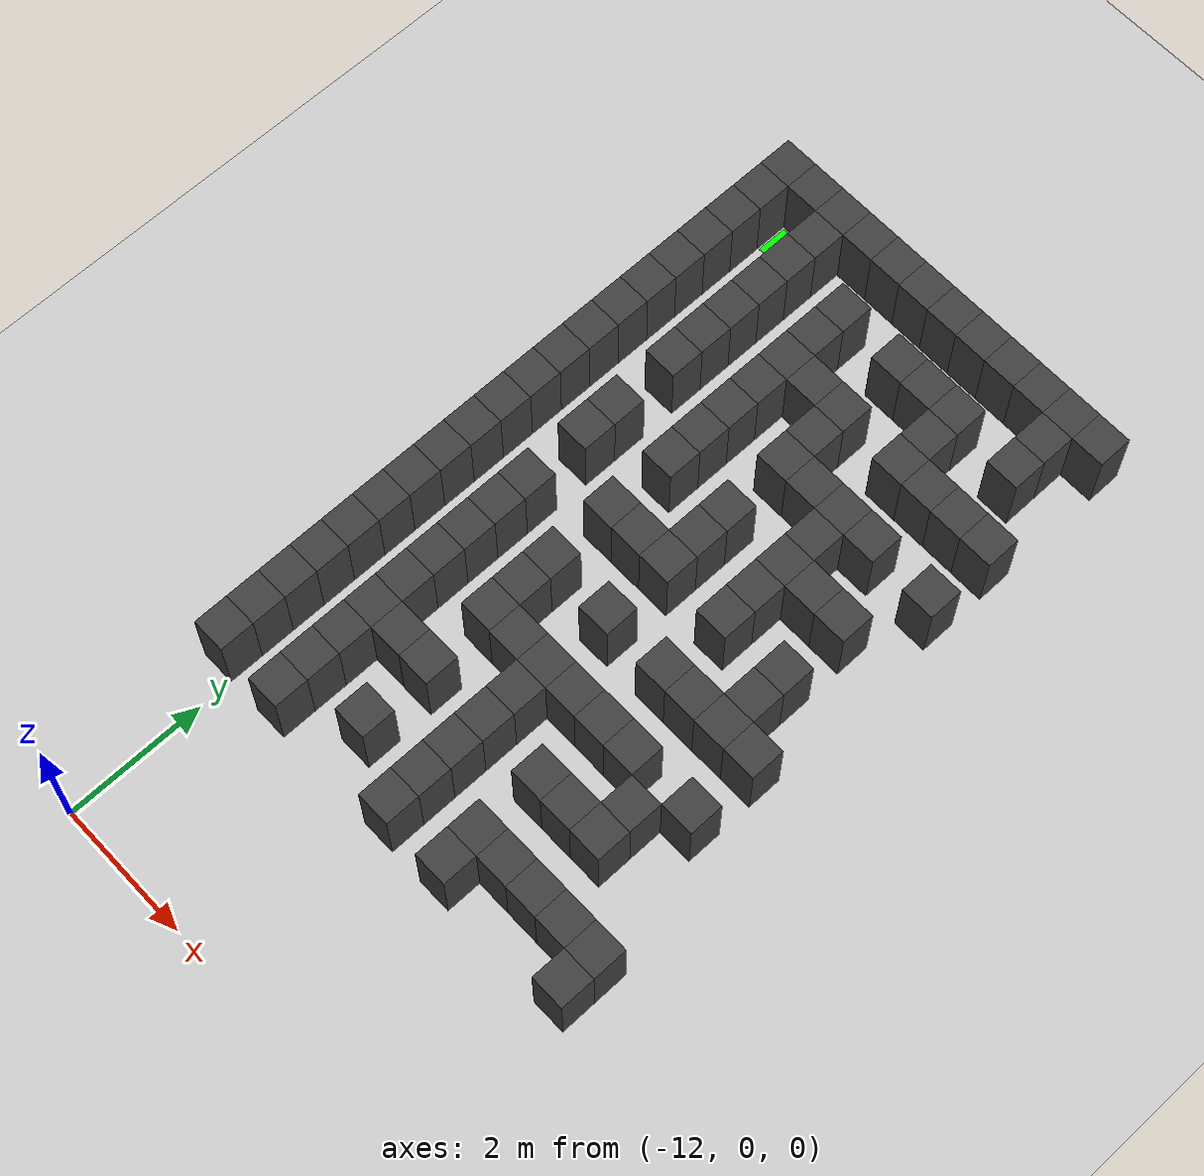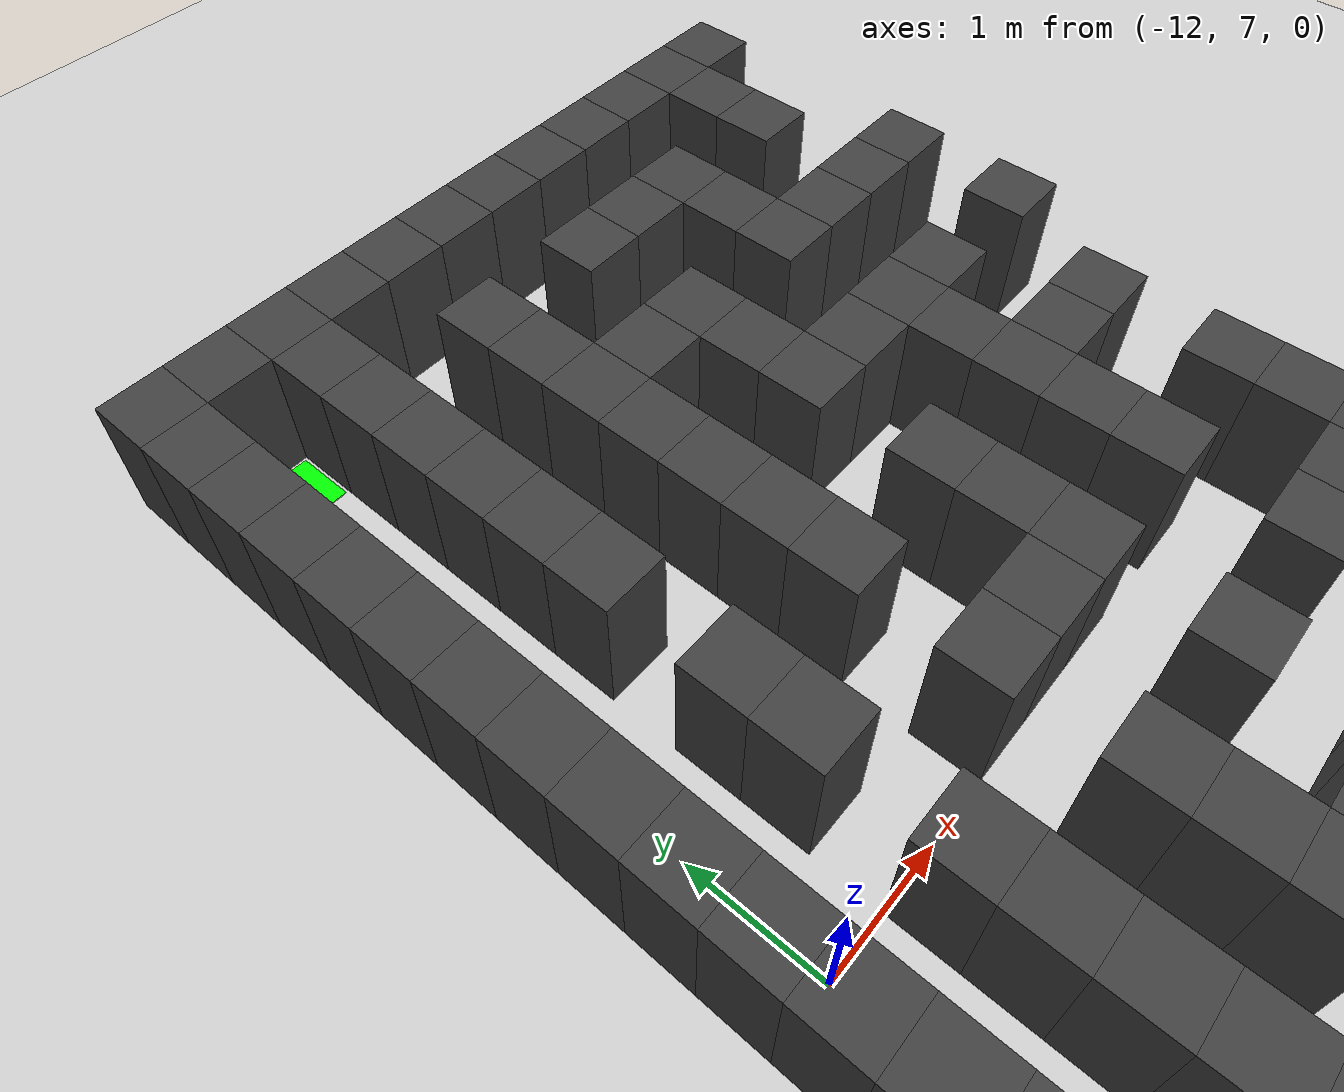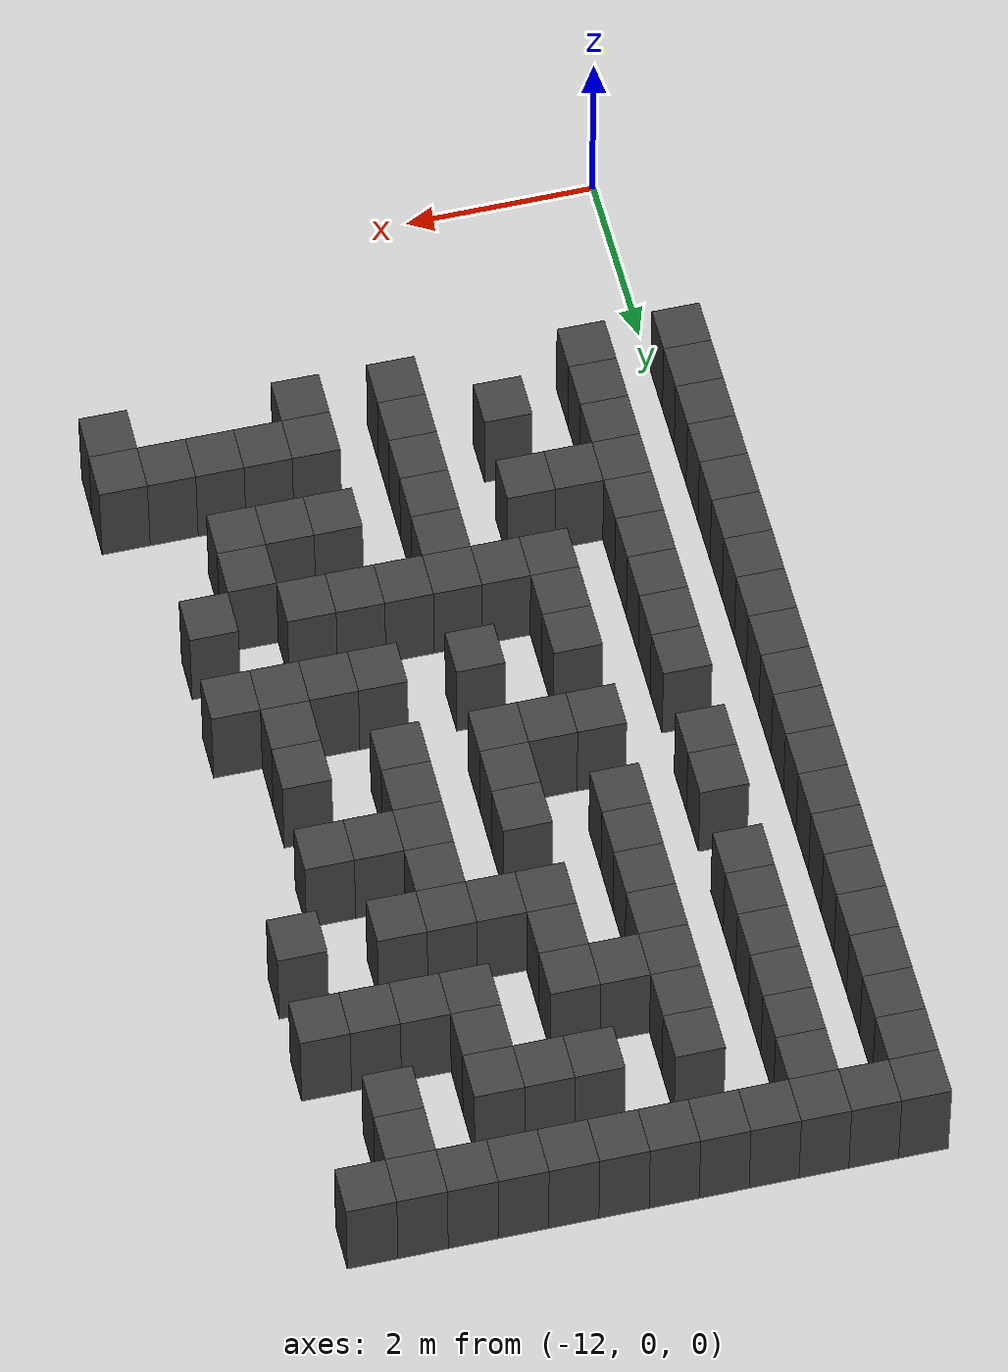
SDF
<sdf version="1.7">
 <world name="map_18814">
  <model name="ground_plane">
   <static>true</static>
   <link name="link">
    <collision name="collision">
     <geometry><plane><normal>0 0 1</normal><size>200 200</size></plane></geometry>
    </collision>
    <visual name="visual">
     <geometry><plane><normal>0 0 1</normal><size>200 200</size></plane></geometry>
     <material><ambient>0.8 0.8 0.8 1</ambient><diffuse>0.8 0.8 0.8 1</diffuse></material>
    </visual>
   </link>
  </model>
  <model name="maze_environment">
   <static>true</static>
   <link name="wall_0">
    <pose>-12.250 12.250 0.500 0 0 0</pose>
    <collision name="col"><geometry><box><size>0.5 0.5 1.0</size></box></geometry></collision>
    <visual name="vis">
     <geometry><box><size>0.5 0.5 1.0</size></box></geometry>
     <material><ambient>0.15 0.15 0.15 1</ambient><diffuse>0.25 0.25 0.25 1</diffuse></material>
    </visual>
   </link>
   <link name="wall_1">
    <pose>-11.750 12.250 0.500 0 0 0</pose>
    <collision name="col"><geometry><box><size>0.5 0.5 1.0</size></box></geometry></collision>
    <visual name="vis">
     <geometry><box><size>0.5 0.5 1.0</size></box></geometry>
     <material><ambient>0.15 0.15 0.15 1</ambient><diffuse>0.25 0.25 0.25 1</diffuse></material>
    </visual>
   </link>
   <link name="wall_2">
    <pose>-11.250 12.250 0.500 0 0 0</pose>
    <collision name="col"><geometry><box><size>0.5 0.5 1.0</size></box></geometry></collision>
    <visual name="vis">
     <geometry><box><size>0.5 0.5 1.0</size></box></geometry>
     <material><ambient>0.15 0.15 0.15 1</ambient><diffuse>0.25 0.25 0.25 1</diffuse></material>
    </visual>
   </link>
   <link name="wall_3">
    <pose>-10.750 12.250 0.500 0 0 0</pose>
    <collision name="col"><geometry><box><size>0.5 0.5 1.0</size></box></geometry></collision>
    <visual name="vis">
     <geometry><box><size>0.5 0.5 1.0</size></box></geometry>
     <material><ambient>0.15 0.15 0.15 1</ambient><diffuse>0.25 0.25 0.25 1</diffuse></material>
    </visual>
   </link>
   <link name="wall_4">
    <pose>-10.250 12.250 0.500 0 0 0</pose>
    <collision name="col"><geometry><box><size>0.5 0.5 1.0</size></box></geometry></collision>
    <visual name="vis">
     <geometry><box><size>0.5 0.5 1.0</size></box></geometry>
     <material><ambient>0.15 0.15 0.15 1</ambient><diffuse>0.25 0.25 0.25 1</diffuse></material>
    </visual>
   </link>
   <link name="wall_5">
    <pose>-9.750 12.250 0.500 0 0 0</pose>
    <collision name="col"><geometry><box><size>0.5 0.5 1.0</size></box></geometry></collision>
    <visual name="vis">
     <geometry><box><size>0.5 0.5 1.0</size></box></geometry>
     <material><ambient>0.15 0.15 0.15 1</ambient><diffuse>0.25 0.25 0.25 1</diffuse></material>
    </visual>
   </link>
   <link name="wall_6">
    <pose>-9.250 12.250 0.500 0 0 0</pose>
    <collision name="col"><geometry><box><size>0.5 0.5 1.0</size></box></geometry></collision>
    <visual name="vis">
     <geometry><box><size>0.5 0.5 1.0</size></box></geometry>
     <material><ambient>0.15 0.15 0.15 1</ambient><diffuse>0.25 0.25 0.25 1</diffuse></material>
    </visual>
   </link>
   <link name="wall_7">
    <pose>-8.750 12.250 0.500 0 0 0</pose>
    <collision name="col"><geometry><box><size>0.5 0.5 1.0</size></box></geometry></collision>
    <visual name="vis">
     <geometry><box><size>0.5 0.5 1.0</size></box></geometry>
     <material><ambient>0.15 0.15 0.15 1</ambient><diffuse>0.25 0.25 0.25 1</diffuse></material>
    </visual>
   </link>
   <link name="wall_8">
    <pose>-8.250 12.250 0.500 0 0 0</pose>
    <collision name="col"><geometry><box><size>0.5 0.5 1.0</size></box></geometry></collision>
    <visual name="vis">
     <geometry><box><size>0.5 0.5 1.0</size></box></geometry>
     <material><ambient>0.15 0.15 0.15 1</ambient><diffuse>0.25 0.25 0.25 1</diffuse></material>
    </visual>
   </link>
   <link name="wall_9">
    <pose>-7.750 12.250 0.500 0 0 0</pose>
    <collision name="col"><geometry><box><size>0.5 0.5 1.0</size></box></geometry></collision>
    <visual name="vis">
     <geometry><box><size>0.5 0.5 1.0</size></box></geometry>
     <material><ambient>0.15 0.15 0.15 1</ambient><diffuse>0.25 0.25 0.25 1</diffuse></material>
    </visual>
   </link>
   <link name="wall_10">
    <pose>-7.250 12.250 0.500 0 0 0</pose>
    <collision name="col"><geometry><box><size>0.5 0.5 1.0</size></box></geometry></collision>
    <visual name="vis">
     <geometry><box><size>0.5 0.5 1.0</size></box></geometry>
     <material><ambient>0.15 0.15 0.15 1</ambient><diffuse>0.25 0.25 0.25 1</diffuse></material>
    </visual>
   </link>
   <link name="wall_11">
    <pose>-6.750 12.250 0.500 0 0 0</pose>
    <collision name="col"><geometry><box><size>0.5 0.5 1.0</size></box></geometry></collision>
    <visual name="vis">
     <geometry><box><size>0.5 0.5 1.0</size></box></geometry>
     <material><ambient>0.15 0.15 0.15 1</ambient><diffuse>0.25 0.25 0.25 1</diffuse></material>
    </visual>
   </link>
   <link name="wall_50">
    <pose>-12.250 11.750 0.500 0 0 0</pose>
    <collision name="col"><geometry><box><size>0.5 0.5 1.0</size></box></geometry></collision>
    <visual name="vis">
     <geometry><box><size>0.5 0.5 1.0</size></box></geometry>
     <material><ambient>0.15 0.15 0.15 1</ambient><diffuse>0.25 0.25 0.25 1</diffuse></material>
    </visual>
   </link>
   <link name="wall_51">
    <pose>-11.250 11.750 0.500 0 0 0</pose>
    <collision name="col"><geometry><box><size>0.5 0.5 1.0</size></box></geometry></collision>
    <visual name="vis">
     <geometry><box><size>0.5 0.5 1.0</size></box></geometry>
     <material><ambient>0.15 0.15 0.15 1</ambient><diffuse>0.25 0.25 0.25 1</diffuse></material>
    </visual>
   </link>
   <link name="wall_52">
    <pose>-7.250 11.750 0.500 0 0 0</pose>
    <collision name="col"><geometry><box><size>0.5 0.5 1.0</size></box></geometry></collision>
    <visual name="vis">
     <geometry><box><size>0.5 0.5 1.0</size></box></geometry>
     <material><ambient>0.15 0.15 0.15 1</ambient><diffuse>0.25 0.25 0.25 1</diffuse></material>
    </visual>
   </link>
   <link name="wall_58">
    <pose>-12.250 11.250 0.500 0 0 0</pose>
    <collision name="col"><geometry><box><size>0.5 0.5 1.0</size></box></geometry></collision>
    <visual name="vis">
     <geometry><box><size>0.5 0.5 1.0</size></box></geometry>
     <material><ambient>0.15 0.15 0.15 1</ambient><diffuse>0.25 0.25 0.25 1</diffuse></material>
    </visual>
   </link>
   <link name="wall_59">
    <pose>-11.250 11.250 0.500 0 0 0</pose>
    <collision name="col"><geometry><box><size>0.5 0.5 1.0</size></box></geometry></collision>
    <visual name="vis">
     <geometry><box><size>0.5 0.5 1.0</size></box></geometry>
     <material><ambient>0.15 0.15 0.15 1</ambient><diffuse>0.25 0.25 0.25 1</diffuse></material>
    </visual>
   </link>
   <link name="wall_60">
    <pose>-10.250 11.250 0.500 0 0 0</pose>
    <collision name="col"><geometry><box><size>0.5 0.5 1.0</size></box></geometry></collision>
    <visual name="vis">
     <geometry><box><size>0.5 0.5 1.0</size></box></geometry>
     <material><ambient>0.15 0.15 0.15 1</ambient><diffuse>0.25 0.25 0.25 1</diffuse></material>
    </visual>
   </link>
   <link name="wall_61">
    <pose>-9.250 11.250 0.500 0 0 0</pose>
    <collision name="col"><geometry><box><size>0.5 0.5 1.0</size></box></geometry></collision>
    <visual name="vis">
     <geometry><box><size>0.5 0.5 1.0</size></box></geometry>
     <material><ambient>0.15 0.15 0.15 1</ambient><diffuse>0.25 0.25 0.25 1</diffuse></material>
    </visual>
   </link>
   <link name="wall_62">
    <pose>-8.750 11.250 0.500 0 0 0</pose>
    <collision name="col"><geometry><box><size>0.5 0.5 1.0</size></box></geometry></collision>
    <visual name="vis">
     <geometry><box><size>0.5 0.5 1.0</size></box></geometry>
     <material><ambient>0.15 0.15 0.15 1</ambient><diffuse>0.25 0.25 0.25 1</diffuse></material>
    </visual>
   </link>
   <link name="wall_63">
    <pose>-8.250 11.250 0.500 0 0 0</pose>
    <collision name="col"><geometry><box><size>0.5 0.5 1.0</size></box></geometry></collision>
    <visual name="vis">
     <geometry><box><size>0.5 0.5 1.0</size></box></geometry>
     <material><ambient>0.15 0.15 0.15 1</ambient><diffuse>0.25 0.25 0.25 1</diffuse></material>
    </visual>
   </link>
   <link name="wall_64">
    <pose>-7.250 11.250 0.500 0 0 0</pose>
    <collision name="col"><geometry><box><size>0.5 0.5 1.0</size></box></geometry></collision>
    <visual name="vis">
     <geometry><box><size>0.5 0.5 1.0</size></box></geometry>
     <material><ambient>0.15 0.15 0.15 1</ambient><diffuse>0.25 0.25 0.25 1</diffuse></material>
    </visual>
   </link>
   <link name="wall_94">
    <pose>-12.250 10.750 0.500 0 0 0</pose>
    <collision name="col"><geometry><box><size>0.5 0.5 1.0</size></box></geometry></collision>
    <visual name="vis">
     <geometry><box><size>0.5 0.5 1.0</size></box></geometry>
     <material><ambient>0.15 0.15 0.15 1</ambient><diffuse>0.25 0.25 0.25 1</diffuse></material>
    </visual>
   </link>
   <link name="wall_95">
    <pose>-11.250 10.750 0.500 0 0 0</pose>
    <collision name="col"><geometry><box><size>0.5 0.5 1.0</size></box></geometry></collision>
    <visual name="vis">
     <geometry><box><size>0.5 0.5 1.0</size></box></geometry>
     <material><ambient>0.15 0.15 0.15 1</ambient><diffuse>0.25 0.25 0.25 1</diffuse></material>
    </visual>
   </link>
   <link name="wall_96">
    <pose>-10.250 10.750 0.500 0 0 0</pose>
    <collision name="col"><geometry><box><size>0.5 0.5 1.0</size></box></geometry></collision>
    <visual name="vis">
     <geometry><box><size>0.5 0.5 1.0</size></box></geometry>
     <material><ambient>0.15 0.15 0.15 1</ambient><diffuse>0.25 0.25 0.25 1</diffuse></material>
    </visual>
   </link>
   <link name="wall_97">
    <pose>-8.250 10.750 0.500 0 0 0</pose>
    <collision name="col"><geometry><box><size>0.5 0.5 1.0</size></box></geometry></collision>
    <visual name="vis">
     <geometry><box><size>0.5 0.5 1.0</size></box></geometry>
     <material><ambient>0.15 0.15 0.15 1</ambient><diffuse>0.25 0.25 0.25 1</diffuse></material>
    </visual>
   </link>
   <link name="wall_109">
    <pose>-12.250 10.250 0.500 0 0 0</pose>
    <collision name="col"><geometry><box><size>0.5 0.5 1.0</size></box></geometry></collision>
    <visual name="vis">
     <geometry><box><size>0.5 0.5 1.0</size></box></geometry>
     <material><ambient>0.15 0.15 0.15 1</ambient><diffuse>0.25 0.25 0.25 1</diffuse></material>
    </visual>
   </link>
   <link name="wall_110">
    <pose>-11.250 10.250 0.500 0 0 0</pose>
    <collision name="col"><geometry><box><size>0.5 0.5 1.0</size></box></geometry></collision>
    <visual name="vis">
     <geometry><box><size>0.5 0.5 1.0</size></box></geometry>
     <material><ambient>0.15 0.15 0.15 1</ambient><diffuse>0.25 0.25 0.25 1</diffuse></material>
    </visual>
   </link>
   <link name="wall_111">
    <pose>-10.250 10.250 0.500 0 0 0</pose>
    <collision name="col"><geometry><box><size>0.5 0.5 1.0</size></box></geometry></collision>
    <visual name="vis">
     <geometry><box><size>0.5 0.5 1.0</size></box></geometry>
     <material><ambient>0.15 0.15 0.15 1</ambient><diffuse>0.25 0.25 0.25 1</diffuse></material>
    </visual>
   </link>
   <link name="wall_112">
    <pose>-9.750 10.250 0.500 0 0 0</pose>
    <collision name="col"><geometry><box><size>0.5 0.5 1.0</size></box></geometry></collision>
    <visual name="vis">
     <geometry><box><size>0.5 0.5 1.0</size></box></geometry>
     <material><ambient>0.15 0.15 0.15 1</ambient><diffuse>0.25 0.25 0.25 1</diffuse></material>
    </visual>
   </link>
   <link name="wall_113">
    <pose>-9.250 10.250 0.500 0 0 0</pose>
    <collision name="col"><geometry><box><size>0.5 0.5 1.0</size></box></geometry></collision>
    <visual name="vis">
     <geometry><box><size>0.5 0.5 1.0</size></box></geometry>
     <material><ambient>0.15 0.15 0.15 1</ambient><diffuse>0.25 0.25 0.25 1</diffuse></material>
    </visual>
   </link>
   <link name="wall_114">
    <pose>-8.250 10.250 0.500 0 0 0</pose>
    <collision name="col"><geometry><box><size>0.5 0.5 1.0</size></box></geometry></collision>
    <visual name="vis">
     <geometry><box><size>0.5 0.5 1.0</size></box></geometry>
     <material><ambient>0.15 0.15 0.15 1</ambient><diffuse>0.25 0.25 0.25 1</diffuse></material>
    </visual>
   </link>
   <link name="wall_115">
    <pose>-7.750 10.250 0.500 0 0 0</pose>
    <collision name="col"><geometry><box><size>0.5 0.5 1.0</size></box></geometry></collision>
    <visual name="vis">
     <geometry><box><size>0.5 0.5 1.0</size></box></geometry>
     <material><ambient>0.15 0.15 0.15 1</ambient><diffuse>0.25 0.25 0.25 1</diffuse></material>
    </visual>
   </link>
   <link name="wall_116">
    <pose>-7.250 10.250 0.500 0 0 0</pose>
    <collision name="col"><geometry><box><size>0.5 0.5 1.0</size></box></geometry></collision>
    <visual name="vis">
     <geometry><box><size>0.5 0.5 1.0</size></box></geometry>
     <material><ambient>0.15 0.15 0.15 1</ambient><diffuse>0.25 0.25 0.25 1</diffuse></material>
    </visual>
   </link>
   <link name="wall_117">
    <pose>-6.750 10.250 0.500 0 0 0</pose>
    <collision name="col"><geometry><box><size>0.5 0.5 1.0</size></box></geometry></collision>
    <visual name="vis">
     <geometry><box><size>0.5 0.5 1.0</size></box></geometry>
     <material><ambient>0.15 0.15 0.15 1</ambient><diffuse>0.25 0.25 0.25 1</diffuse></material>
    </visual>
   </link>
   <link name="wall_148">
    <pose>-12.250 9.750 0.500 0 0 0</pose>
    <collision name="col"><geometry><box><size>0.5 0.5 1.0</size></box></geometry></collision>
    <visual name="vis">
     <geometry><box><size>0.5 0.5 1.0</size></box></geometry>
     <material><ambient>0.15 0.15 0.15 1</ambient><diffuse>0.25 0.25 0.25 1</diffuse></material>
    </visual>
   </link>
   <link name="wall_149">
    <pose>-11.250 9.750 0.500 0 0 0</pose>
    <collision name="col"><geometry><box><size>0.5 0.5 1.0</size></box></geometry></collision>
    <visual name="vis">
     <geometry><box><size>0.5 0.5 1.0</size></box></geometry>
     <material><ambient>0.15 0.15 0.15 1</ambient><diffuse>0.25 0.25 0.25 1</diffuse></material>
    </visual>
   </link>
   <link name="wall_150">
    <pose>-10.250 9.750 0.500 0 0 0</pose>
    <collision name="col"><geometry><box><size>0.5 0.5 1.0</size></box></geometry></collision>
    <visual name="vis">
     <geometry><box><size>0.5 0.5 1.0</size></box></geometry>
     <material><ambient>0.15 0.15 0.15 1</ambient><diffuse>0.25 0.25 0.25 1</diffuse></material>
    </visual>
   </link>
   <link name="wall_151">
    <pose>-9.250 9.750 0.500 0 0 0</pose>
    <collision name="col"><geometry><box><size>0.5 0.5 1.0</size></box></geometry></collision>
    <visual name="vis">
     <geometry><box><size>0.5 0.5 1.0</size></box></geometry>
     <material><ambient>0.15 0.15 0.15 1</ambient><diffuse>0.25 0.25 0.25 1</diffuse></material>
    </visual>
   </link>
   <link name="wall_160">
    <pose>-12.250 9.250 0.500 0 0 0</pose>
    <collision name="col"><geometry><box><size>0.5 0.5 1.0</size></box></geometry></collision>
    <visual name="vis">
     <geometry><box><size>0.5 0.5 1.0</size></box></geometry>
     <material><ambient>0.15 0.15 0.15 1</ambient><diffuse>0.25 0.25 0.25 1</diffuse></material>
    </visual>
   </link>
   <link name="wall_161">
    <pose>-11.250 9.250 0.500 0 0 0</pose>
    <collision name="col"><geometry><box><size>0.5 0.5 1.0</size></box></geometry></collision>
    <visual name="vis">
     <geometry><box><size>0.5 0.5 1.0</size></box></geometry>
     <material><ambient>0.15 0.15 0.15 1</ambient><diffuse>0.25 0.25 0.25 1</diffuse></material>
    </visual>
   </link>
   <link name="wall_162">
    <pose>-10.250 9.250 0.500 0 0 0</pose>
    <collision name="col"><geometry><box><size>0.5 0.5 1.0</size></box></geometry></collision>
    <visual name="vis">
     <geometry><box><size>0.5 0.5 1.0</size></box></geometry>
     <material><ambient>0.15 0.15 0.15 1</ambient><diffuse>0.25 0.25 0.25 1</diffuse></material>
    </visual>
   </link>
   <link name="wall_163">
    <pose>-9.250 9.250 0.500 0 0 0</pose>
    <collision name="col"><geometry><box><size>0.5 0.5 1.0</size></box></geometry></collision>
    <visual name="vis">
     <geometry><box><size>0.5 0.5 1.0</size></box></geometry>
     <material><ambient>0.15 0.15 0.15 1</ambient><diffuse>0.25 0.25 0.25 1</diffuse></material>
    </visual>
   </link>
   <link name="wall_164">
    <pose>-8.750 9.250 0.500 0 0 0</pose>
    <collision name="col"><geometry><box><size>0.5 0.5 1.0</size></box></geometry></collision>
    <visual name="vis">
     <geometry><box><size>0.5 0.5 1.0</size></box></geometry>
     <material><ambient>0.15 0.15 0.15 1</ambient><diffuse>0.25 0.25 0.25 1</diffuse></material>
    </visual>
   </link>
   <link name="wall_165">
    <pose>-8.250 9.250 0.500 0 0 0</pose>
    <collision name="col"><geometry><box><size>0.5 0.5 1.0</size></box></geometry></collision>
    <visual name="vis">
     <geometry><box><size>0.5 0.5 1.0</size></box></geometry>
     <material><ambient>0.15 0.15 0.15 1</ambient><diffuse>0.25 0.25 0.25 1</diffuse></material>
    </visual>
   </link>
   <link name="wall_166">
    <pose>-7.750 9.250 0.500 0 0 0</pose>
    <collision name="col"><geometry><box><size>0.5 0.5 1.0</size></box></geometry></collision>
    <visual name="vis">
     <geometry><box><size>0.5 0.5 1.0</size></box></geometry>
     <material><ambient>0.15 0.15 0.15 1</ambient><diffuse>0.25 0.25 0.25 1</diffuse></material>
    </visual>
   </link>
   <link name="wall_167">
    <pose>-6.750 9.250 0.500 0 0 0</pose>
    <collision name="col"><geometry><box><size>0.5 0.5 1.0</size></box></geometry></collision>
    <visual name="vis">
     <geometry><box><size>0.5 0.5 1.0</size></box></geometry>
     <material><ambient>0.15 0.15 0.15 1</ambient><diffuse>0.25 0.25 0.25 1</diffuse></material>
    </visual>
   </link>
   <link name="wall_199">
    <pose>-12.250 8.750 0.500 0 0 0</pose>
    <collision name="col"><geometry><box><size>0.5 0.5 1.0</size></box></geometry></collision>
    <visual name="vis">
     <geometry><box><size>0.5 0.5 1.0</size></box></geometry>
     <material><ambient>0.15 0.15 0.15 1</ambient><diffuse>0.25 0.25 0.25 1</diffuse></material>
    </visual>
   </link>
   <link name="wall_200">
    <pose>-10.250 8.750 0.500 0 0 0</pose>
    <collision name="col"><geometry><box><size>0.5 0.5 1.0</size></box></geometry></collision>
    <visual name="vis">
     <geometry><box><size>0.5 0.5 1.0</size></box></geometry>
     <material><ambient>0.15 0.15 0.15 1</ambient><diffuse>0.25 0.25 0.25 1</diffuse></material>
    </visual>
   </link>
   <link name="wall_201">
    <pose>-8.250 8.750 0.500 0 0 0</pose>
    <collision name="col"><geometry><box><size>0.5 0.5 1.0</size></box></geometry></collision>
    <visual name="vis">
     <geometry><box><size>0.5 0.5 1.0</size></box></geometry>
     <material><ambient>0.15 0.15 0.15 1</ambient><diffuse>0.25 0.25 0.25 1</diffuse></material>
    </visual>
   </link>
   <link name="wall_212">
    <pose>-12.250 8.250 0.500 0 0 0</pose>
    <collision name="col"><geometry><box><size>0.5 0.5 1.0</size></box></geometry></collision>
    <visual name="vis">
     <geometry><box><size>0.5 0.5 1.0</size></box></geometry>
     <material><ambient>0.15 0.15 0.15 1</ambient><diffuse>0.25 0.25 0.25 1</diffuse></material>
    </visual>
   </link>
   <link name="wall_213">
    <pose>-11.250 8.250 0.500 0 0 0</pose>
    <collision name="col"><geometry><box><size>0.5 0.5 1.0</size></box></geometry></collision>
    <visual name="vis">
     <geometry><box><size>0.5 0.5 1.0</size></box></geometry>
     <material><ambient>0.15 0.15 0.15 1</ambient><diffuse>0.25 0.25 0.25 1</diffuse></material>
    </visual>
   </link>
   <link name="wall_214">
    <pose>-10.250 8.250 0.500 0 0 0</pose>
    <collision name="col"><geometry><box><size>0.5 0.5 1.0</size></box></geometry></collision>
    <visual name="vis">
     <geometry><box><size>0.5 0.5 1.0</size></box></geometry>
     <material><ambient>0.15 0.15 0.15 1</ambient><diffuse>0.25 0.25 0.25 1</diffuse></material>
    </visual>
   </link>
   <link name="wall_215">
    <pose>-9.250 8.250 0.500 0 0 0</pose>
    <collision name="col"><geometry><box><size>0.5 0.5 1.0</size></box></geometry></collision>
    <visual name="vis">
     <geometry><box><size>0.5 0.5 1.0</size></box></geometry>
     <material><ambient>0.15 0.15 0.15 1</ambient><diffuse>0.25 0.25 0.25 1</diffuse></material>
    </visual>
   </link>
   <link name="wall_216">
    <pose>-8.250 8.250 0.500 0 0 0</pose>
    <collision name="col"><geometry><box><size>0.5 0.5 1.0</size></box></geometry></collision>
    <visual name="vis">
     <geometry><box><size>0.5 0.5 1.0</size></box></geometry>
     <material><ambient>0.15 0.15 0.15 1</ambient><diffuse>0.25 0.25 0.25 1</diffuse></material>
    </visual>
   </link>
   <link name="wall_217">
    <pose>-7.750 8.250 0.500 0 0 0</pose>
    <collision name="col"><geometry><box><size>0.5 0.5 1.0</size></box></geometry></collision>
    <visual name="vis">
     <geometry><box><size>0.5 0.5 1.0</size></box></geometry>
     <material><ambient>0.15 0.15 0.15 1</ambient><diffuse>0.25 0.25 0.25 1</diffuse></material>
    </visual>
   </link>
   <link name="wall_218">
    <pose>-7.250 8.250 0.500 0 0 0</pose>
    <collision name="col"><geometry><box><size>0.5 0.5 1.0</size></box></geometry></collision>
    <visual name="vis">
     <geometry><box><size>0.5 0.5 1.0</size></box></geometry>
     <material><ambient>0.15 0.15 0.15 1</ambient><diffuse>0.25 0.25 0.25 1</diffuse></material>
    </visual>
   </link>
   <link name="wall_246">
    <pose>-12.250 7.750 0.500 0 0 0</pose>
    <collision name="col"><geometry><box><size>0.5 0.5 1.0</size></box></geometry></collision>
    <visual name="vis">
     <geometry><box><size>0.5 0.5 1.0</size></box></geometry>
     <material><ambient>0.15 0.15 0.15 1</ambient><diffuse>0.25 0.25 0.25 1</diffuse></material>
    </visual>
   </link>
   <link name="wall_247">
    <pose>-11.250 7.750 0.500 0 0 0</pose>
    <collision name="col"><geometry><box><size>0.5 0.5 1.0</size></box></geometry></collision>
    <visual name="vis">
     <geometry><box><size>0.5 0.5 1.0</size></box></geometry>
     <material><ambient>0.15 0.15 0.15 1</ambient><diffuse>0.25 0.25 0.25 1</diffuse></material>
    </visual>
   </link>
   <link name="wall_248">
    <pose>-9.250 7.750 0.500 0 0 0</pose>
    <collision name="col"><geometry><box><size>0.5 0.5 1.0</size></box></geometry></collision>
    <visual name="vis">
     <geometry><box><size>0.5 0.5 1.0</size></box></geometry>
     <material><ambient>0.15 0.15 0.15 1</ambient><diffuse>0.25 0.25 0.25 1</diffuse></material>
    </visual>
   </link>
   <link name="wall_249">
    <pose>-8.250 7.750 0.500 0 0 0</pose>
    <collision name="col"><geometry><box><size>0.5 0.5 1.0</size></box></geometry></collision>
    <visual name="vis">
     <geometry><box><size>0.5 0.5 1.0</size></box></geometry>
     <material><ambient>0.15 0.15 0.15 1</ambient><diffuse>0.25 0.25 0.25 1</diffuse></material>
    </visual>
   </link>
   <link name="wall_261">
    <pose>-12.250 7.250 0.500 0 0 0</pose>
    <collision name="col"><geometry><box><size>0.5 0.5 1.0</size></box></geometry></collision>
    <visual name="vis">
     <geometry><box><size>0.5 0.5 1.0</size></box></geometry>
     <material><ambient>0.15 0.15 0.15 1</ambient><diffuse>0.25 0.25 0.25 1</diffuse></material>
    </visual>
   </link>
   <link name="wall_262">
    <pose>-10.250 7.250 0.500 0 0 0</pose>
    <collision name="col"><geometry><box><size>0.5 0.5 1.0</size></box></geometry></collision>
    <visual name="vis">
     <geometry><box><size>0.5 0.5 1.0</size></box></geometry>
     <material><ambient>0.15 0.15 0.15 1</ambient><diffuse>0.25 0.25 0.25 1</diffuse></material>
    </visual>
   </link>
   <link name="wall_263">
    <pose>-9.750 7.250 0.500 0 0 0</pose>
    <collision name="col"><geometry><box><size>0.5 0.5 1.0</size></box></geometry></collision>
    <visual name="vis">
     <geometry><box><size>0.5 0.5 1.0</size></box></geometry>
     <material><ambient>0.15 0.15 0.15 1</ambient><diffuse>0.25 0.25 0.25 1</diffuse></material>
    </visual>
   </link>
   <link name="wall_264">
    <pose>-9.250 7.250 0.500 0 0 0</pose>
    <collision name="col"><geometry><box><size>0.5 0.5 1.0</size></box></geometry></collision>
    <visual name="vis">
     <geometry><box><size>0.5 0.5 1.0</size></box></geometry>
     <material><ambient>0.15 0.15 0.15 1</ambient><diffuse>0.25 0.25 0.25 1</diffuse></material>
    </visual>
   </link>
   <link name="wall_265">
    <pose>-8.250 7.250 0.500 0 0 0</pose>
    <collision name="col"><geometry><box><size>0.5 0.5 1.0</size></box></geometry></collision>
    <visual name="vis">
     <geometry><box><size>0.5 0.5 1.0</size></box></geometry>
     <material><ambient>0.15 0.15 0.15 1</ambient><diffuse>0.25 0.25 0.25 1</diffuse></material>
    </visual>
   </link>
   <link name="wall_266">
    <pose>-7.250 7.250 0.500 0 0 0</pose>
    <collision name="col"><geometry><box><size>0.5 0.5 1.0</size></box></geometry></collision>
    <visual name="vis">
     <geometry><box><size>0.5 0.5 1.0</size></box></geometry>
     <material><ambient>0.15 0.15 0.15 1</ambient><diffuse>0.25 0.25 0.25 1</diffuse></material>
    </visual>
   </link>
   <link name="wall_295">
    <pose>-12.250 6.750 0.500 0 0 0</pose>
    <collision name="col"><geometry><box><size>0.5 0.5 1.0</size></box></geometry></collision>
    <visual name="vis">
     <geometry><box><size>0.5 0.5 1.0</size></box></geometry>
     <material><ambient>0.15 0.15 0.15 1</ambient><diffuse>0.25 0.25 0.25 1</diffuse></material>
    </visual>
   </link>
   <link name="wall_296">
    <pose>-11.250 6.750 0.500 0 0 0</pose>
    <collision name="col"><geometry><box><size>0.5 0.5 1.0</size></box></geometry></collision>
    <visual name="vis">
     <geometry><box><size>0.5 0.5 1.0</size></box></geometry>
     <material><ambient>0.15 0.15 0.15 1</ambient><diffuse>0.25 0.25 0.25 1</diffuse></material>
    </visual>
   </link>
   <link name="wall_297">
    <pose>-7.250 6.750 0.500 0 0 0</pose>
    <collision name="col"><geometry><box><size>0.5 0.5 1.0</size></box></geometry></collision>
    <visual name="vis">
     <geometry><box><size>0.5 0.5 1.0</size></box></geometry>
     <material><ambient>0.15 0.15 0.15 1</ambient><diffuse>0.25 0.25 0.25 1</diffuse></material>
    </visual>
   </link>
   <link name="wall_307">
    <pose>-12.250 6.250 0.500 0 0 0</pose>
    <collision name="col"><geometry><box><size>0.5 0.5 1.0</size></box></geometry></collision>
    <visual name="vis">
     <geometry><box><size>0.5 0.5 1.0</size></box></geometry>
     <material><ambient>0.15 0.15 0.15 1</ambient><diffuse>0.25 0.25 0.25 1</diffuse></material>
    </visual>
   </link>
   <link name="wall_308">
    <pose>-11.250 6.250 0.500 0 0 0</pose>
    <collision name="col"><geometry><box><size>0.5 0.5 1.0</size></box></geometry></collision>
    <visual name="vis">
     <geometry><box><size>0.5 0.5 1.0</size></box></geometry>
     <material><ambient>0.15 0.15 0.15 1</ambient><diffuse>0.25 0.25 0.25 1</diffuse></material>
    </visual>
   </link>
   <link name="wall_309">
    <pose>-10.250 6.250 0.500 0 0 0</pose>
    <collision name="col"><geometry><box><size>0.5 0.5 1.0</size></box></geometry></collision>
    <visual name="vis">
     <geometry><box><size>0.5 0.5 1.0</size></box></geometry>
     <material><ambient>0.15 0.15 0.15 1</ambient><diffuse>0.25 0.25 0.25 1</diffuse></material>
    </visual>
   </link>
   <link name="wall_310">
    <pose>-9.250 6.250 0.500 0 0 0</pose>
    <collision name="col"><geometry><box><size>0.5 0.5 1.0</size></box></geometry></collision>
    <visual name="vis">
     <geometry><box><size>0.5 0.5 1.0</size></box></geometry>
     <material><ambient>0.15 0.15 0.15 1</ambient><diffuse>0.25 0.25 0.25 1</diffuse></material>
    </visual>
   </link>
   <link name="wall_311">
    <pose>-8.250 6.250 0.500 0 0 0</pose>
    <collision name="col"><geometry><box><size>0.5 0.5 1.0</size></box></geometry></collision>
    <visual name="vis">
     <geometry><box><size>0.5 0.5 1.0</size></box></geometry>
     <material><ambient>0.15 0.15 0.15 1</ambient><diffuse>0.25 0.25 0.25 1</diffuse></material>
    </visual>
   </link>
   <link name="wall_312">
    <pose>-7.750 6.250 0.500 0 0 0</pose>
    <collision name="col"><geometry><box><size>0.5 0.5 1.0</size></box></geometry></collision>
    <visual name="vis">
     <geometry><box><size>0.5 0.5 1.0</size></box></geometry>
     <material><ambient>0.15 0.15 0.15 1</ambient><diffuse>0.25 0.25 0.25 1</diffuse></material>
    </visual>
   </link>
   <link name="wall_313">
    <pose>-7.250 6.250 0.500 0 0 0</pose>
    <collision name="col"><geometry><box><size>0.5 0.5 1.0</size></box></geometry></collision>
    <visual name="vis">
     <geometry><box><size>0.5 0.5 1.0</size></box></geometry>
     <material><ambient>0.15 0.15 0.15 1</ambient><diffuse>0.25 0.25 0.25 1</diffuse></material>
    </visual>
   </link>
   <link name="wall_314">
    <pose>-6.750 6.250 0.500 0 0 0</pose>
    <collision name="col"><geometry><box><size>0.5 0.5 1.0</size></box></geometry></collision>
    <visual name="vis">
     <geometry><box><size>0.5 0.5 1.0</size></box></geometry>
     <material><ambient>0.15 0.15 0.15 1</ambient><diffuse>0.25 0.25 0.25 1</diffuse></material>
    </visual>
   </link>
   <link name="wall_345">
    <pose>-12.250 5.750 0.500 0 0 0</pose>
    <collision name="col"><geometry><box><size>0.5 0.5 1.0</size></box></geometry></collision>
    <visual name="vis">
     <geometry><box><size>0.5 0.5 1.0</size></box></geometry>
     <material><ambient>0.15 0.15 0.15 1</ambient><diffuse>0.25 0.25 0.25 1</diffuse></material>
    </visual>
   </link>
   <link name="wall_346">
    <pose>-11.250 5.750 0.500 0 0 0</pose>
    <collision name="col"><geometry><box><size>0.5 0.5 1.0</size></box></geometry></collision>
    <visual name="vis">
     <geometry><box><size>0.5 0.5 1.0</size></box></geometry>
     <material><ambient>0.15 0.15 0.15 1</ambient><diffuse>0.25 0.25 0.25 1</diffuse></material>
    </visual>
   </link>
   <link name="wall_347">
    <pose>-10.250 5.750 0.500 0 0 0</pose>
    <collision name="col"><geometry><box><size>0.5 0.5 1.0</size></box></geometry></collision>
    <visual name="vis">
     <geometry><box><size>0.5 0.5 1.0</size></box></geometry>
     <material><ambient>0.15 0.15 0.15 1</ambient><diffuse>0.25 0.25 0.25 1</diffuse></material>
    </visual>
   </link>
   <link name="wall_359">
    <pose>-12.250 5.250 0.500 0 0 0</pose>
    <collision name="col"><geometry><box><size>0.5 0.5 1.0</size></box></geometry></collision>
    <visual name="vis">
     <geometry><box><size>0.5 0.5 1.0</size></box></geometry>
     <material><ambient>0.15 0.15 0.15 1</ambient><diffuse>0.25 0.25 0.25 1</diffuse></material>
    </visual>
   </link>
   <link name="wall_360">
    <pose>-11.250 5.250 0.500 0 0 0</pose>
    <collision name="col"><geometry><box><size>0.5 0.5 1.0</size></box></geometry></collision>
    <visual name="vis">
     <geometry><box><size>0.5 0.5 1.0</size></box></geometry>
     <material><ambient>0.15 0.15 0.15 1</ambient><diffuse>0.25 0.25 0.25 1</diffuse></material>
    </visual>
   </link>
   <link name="wall_361">
    <pose>-10.250 5.250 0.500 0 0 0</pose>
    <collision name="col"><geometry><box><size>0.5 0.5 1.0</size></box></geometry></collision>
    <visual name="vis">
     <geometry><box><size>0.5 0.5 1.0</size></box></geometry>
     <material><ambient>0.15 0.15 0.15 1</ambient><diffuse>0.25 0.25 0.25 1</diffuse></material>
    </visual>
   </link>
   <link name="wall_362">
    <pose>-9.750 5.250 0.500 0 0 0</pose>
    <collision name="col"><geometry><box><size>0.5 0.5 1.0</size></box></geometry></collision>
    <visual name="vis">
     <geometry><box><size>0.5 0.5 1.0</size></box></geometry>
     <material><ambient>0.15 0.15 0.15 1</ambient><diffuse>0.25 0.25 0.25 1</diffuse></material>
    </visual>
   </link>
   <link name="wall_363">
    <pose>-9.250 5.250 0.500 0 0 0</pose>
    <collision name="col"><geometry><box><size>0.5 0.5 1.0</size></box></geometry></collision>
    <visual name="vis">
     <geometry><box><size>0.5 0.5 1.0</size></box></geometry>
     <material><ambient>0.15 0.15 0.15 1</ambient><diffuse>0.25 0.25 0.25 1</diffuse></material>
    </visual>
   </link>
   <link name="wall_364">
    <pose>-8.750 5.250 0.500 0 0 0</pose>
    <collision name="col"><geometry><box><size>0.5 0.5 1.0</size></box></geometry></collision>
    <visual name="vis">
     <geometry><box><size>0.5 0.5 1.0</size></box></geometry>
     <material><ambient>0.15 0.15 0.15 1</ambient><diffuse>0.25 0.25 0.25 1</diffuse></material>
    </visual>
   </link>
   <link name="wall_365">
    <pose>-8.250 5.250 0.500 0 0 0</pose>
    <collision name="col"><geometry><box><size>0.5 0.5 1.0</size></box></geometry></collision>
    <visual name="vis">
     <geometry><box><size>0.5 0.5 1.0</size></box></geometry>
     <material><ambient>0.15 0.15 0.15 1</ambient><diffuse>0.25 0.25 0.25 1</diffuse></material>
    </visual>
   </link>
   <link name="wall_366">
    <pose>-7.750 5.250 0.500 0 0 0</pose>
    <collision name="col"><geometry><box><size>0.5 0.5 1.0</size></box></geometry></collision>
    <visual name="vis">
     <geometry><box><size>0.5 0.5 1.0</size></box></geometry>
     <material><ambient>0.15 0.15 0.15 1</ambient><diffuse>0.25 0.25 0.25 1</diffuse></material>
    </visual>
   </link>
   <link name="wall_367">
    <pose>-6.750 5.250 0.500 0 0 0</pose>
    <collision name="col"><geometry><box><size>0.5 0.5 1.0</size></box></geometry></collision>
    <visual name="vis">
     <geometry><box><size>0.5 0.5 1.0</size></box></geometry>
     <material><ambient>0.15 0.15 0.15 1</ambient><diffuse>0.25 0.25 0.25 1</diffuse></material>
    </visual>
   </link>
   <link name="wall_396">
    <pose>-12.250 4.750 0.500 0 0 0</pose>
    <collision name="col"><geometry><box><size>0.5 0.5 1.0</size></box></geometry></collision>
    <visual name="vis">
     <geometry><box><size>0.5 0.5 1.0</size></box></geometry>
     <material><ambient>0.15 0.15 0.15 1</ambient><diffuse>0.25 0.25 0.25 1</diffuse></material>
    </visual>
   </link>
   <link name="wall_397">
    <pose>-11.250 4.750 0.500 0 0 0</pose>
    <collision name="col"><geometry><box><size>0.5 0.5 1.0</size></box></geometry></collision>
    <visual name="vis">
     <geometry><box><size>0.5 0.5 1.0</size></box></geometry>
     <material><ambient>0.15 0.15 0.15 1</ambient><diffuse>0.25 0.25 0.25 1</diffuse></material>
    </visual>
   </link>
   <link name="wall_398">
    <pose>-9.250 4.750 0.500 0 0 0</pose>
    <collision name="col"><geometry><box><size>0.5 0.5 1.0</size></box></geometry></collision>
    <visual name="vis">
     <geometry><box><size>0.5 0.5 1.0</size></box></geometry>
     <material><ambient>0.15 0.15 0.15 1</ambient><diffuse>0.25 0.25 0.25 1</diffuse></material>
    </visual>
   </link>
   <link name="wall_399">
    <pose>-7.250 4.750 0.500 0 0 0</pose>
    <collision name="col"><geometry><box><size>0.5 0.5 1.0</size></box></geometry></collision>
    <visual name="vis">
     <geometry><box><size>0.5 0.5 1.0</size></box></geometry>
     <material><ambient>0.15 0.15 0.15 1</ambient><diffuse>0.25 0.25 0.25 1</diffuse></material>
    </visual>
   </link>
   <link name="wall_410">
    <pose>-12.250 4.250 0.500 0 0 0</pose>
    <collision name="col"><geometry><box><size>0.5 0.5 1.0</size></box></geometry></collision>
    <visual name="vis">
     <geometry><box><size>0.5 0.5 1.0</size></box></geometry>
     <material><ambient>0.15 0.15 0.15 1</ambient><diffuse>0.25 0.25 0.25 1</diffuse></material>
    </visual>
   </link>
   <link name="wall_411">
    <pose>-11.250 4.250 0.500 0 0 0</pose>
    <collision name="col"><geometry><box><size>0.5 0.5 1.0</size></box></geometry></collision>
    <visual name="vis">
     <geometry><box><size>0.5 0.5 1.0</size></box></geometry>
     <material><ambient>0.15 0.15 0.15 1</ambient><diffuse>0.25 0.25 0.25 1</diffuse></material>
    </visual>
   </link>
   <link name="wall_412">
    <pose>-10.750 4.250 0.500 0 0 0</pose>
    <collision name="col"><geometry><box><size>0.5 0.5 1.0</size></box></geometry></collision>
    <visual name="vis">
     <geometry><box><size>0.5 0.5 1.0</size></box></geometry>
     <material><ambient>0.15 0.15 0.15 1</ambient><diffuse>0.25 0.25 0.25 1</diffuse></material>
    </visual>
   </link>
   <link name="wall_413">
    <pose>-10.250 4.250 0.500 0 0 0</pose>
    <collision name="col"><geometry><box><size>0.5 0.5 1.0</size></box></geometry></collision>
    <visual name="vis">
     <geometry><box><size>0.5 0.5 1.0</size></box></geometry>
     <material><ambient>0.15 0.15 0.15 1</ambient><diffuse>0.25 0.25 0.25 1</diffuse></material>
    </visual>
   </link>
   <link name="wall_414">
    <pose>-9.250 4.250 0.500 0 0 0</pose>
    <collision name="col"><geometry><box><size>0.5 0.5 1.0</size></box></geometry></collision>
    <visual name="vis">
     <geometry><box><size>0.5 0.5 1.0</size></box></geometry>
     <material><ambient>0.15 0.15 0.15 1</ambient><diffuse>0.25 0.25 0.25 1</diffuse></material>
    </visual>
   </link>
   <link name="wall_415">
    <pose>-8.250 4.250 0.500 0 0 0</pose>
    <collision name="col"><geometry><box><size>0.5 0.5 1.0</size></box></geometry></collision>
    <visual name="vis">
     <geometry><box><size>0.5 0.5 1.0</size></box></geometry>
     <material><ambient>0.15 0.15 0.15 1</ambient><diffuse>0.25 0.25 0.25 1</diffuse></material>
    </visual>
   </link>
   <link name="wall_416">
    <pose>-7.750 4.250 0.500 0 0 0</pose>
    <collision name="col"><geometry><box><size>0.5 0.5 1.0</size></box></geometry></collision>
    <visual name="vis">
     <geometry><box><size>0.5 0.5 1.0</size></box></geometry>
     <material><ambient>0.15 0.15 0.15 1</ambient><diffuse>0.25 0.25 0.25 1</diffuse></material>
    </visual>
   </link>
   <link name="wall_417">
    <pose>-7.250 4.250 0.500 0 0 0</pose>
    <collision name="col"><geometry><box><size>0.5 0.5 1.0</size></box></geometry></collision>
    <visual name="vis">
     <geometry><box><size>0.5 0.5 1.0</size></box></geometry>
     <material><ambient>0.15 0.15 0.15 1</ambient><diffuse>0.25 0.25 0.25 1</diffuse></material>
    </visual>
   </link>
   <link name="wall_446">
    <pose>-12.250 3.750 0.500 0 0 0</pose>
    <collision name="col"><geometry><box><size>0.5 0.5 1.0</size></box></geometry></collision>
    <visual name="vis">
     <geometry><box><size>0.5 0.5 1.0</size></box></geometry>
     <material><ambient>0.15 0.15 0.15 1</ambient><diffuse>0.25 0.25 0.25 1</diffuse></material>
    </visual>
   </link>
   <link name="wall_447">
    <pose>-11.250 3.750 0.500 0 0 0</pose>
    <collision name="col"><geometry><box><size>0.5 0.5 1.0</size></box></geometry></collision>
    <visual name="vis">
     <geometry><box><size>0.5 0.5 1.0</size></box></geometry>
     <material><ambient>0.15 0.15 0.15 1</ambient><diffuse>0.25 0.25 0.25 1</diffuse></material>
    </visual>
   </link>
   <link name="wall_448">
    <pose>-9.250 3.750 0.500 0 0 0</pose>
    <collision name="col"><geometry><box><size>0.5 0.5 1.0</size></box></geometry></collision>
    <visual name="vis">
     <geometry><box><size>0.5 0.5 1.0</size></box></geometry>
     <material><ambient>0.15 0.15 0.15 1</ambient><diffuse>0.25 0.25 0.25 1</diffuse></material>
    </visual>
   </link>
   <link name="wall_461">
    <pose>-12.250 3.250 0.500 0 0 0</pose>
    <collision name="col"><geometry><box><size>0.5 0.5 1.0</size></box></geometry></collision>
    <visual name="vis">
     <geometry><box><size>0.5 0.5 1.0</size></box></geometry>
     <material><ambient>0.15 0.15 0.15 1</ambient><diffuse>0.25 0.25 0.25 1</diffuse></material>
    </visual>
   </link>
   <link name="wall_462">
    <pose>-11.250 3.250 0.500 0 0 0</pose>
    <collision name="col"><geometry><box><size>0.5 0.5 1.0</size></box></geometry></collision>
    <visual name="vis">
     <geometry><box><size>0.5 0.5 1.0</size></box></geometry>
     <material><ambient>0.15 0.15 0.15 1</ambient><diffuse>0.25 0.25 0.25 1</diffuse></material>
    </visual>
   </link>
   <link name="wall_463">
    <pose>-10.250 3.250 0.500 0 0 0</pose>
    <collision name="col"><geometry><box><size>0.5 0.5 1.0</size></box></geometry></collision>
    <visual name="vis">
     <geometry><box><size>0.5 0.5 1.0</size></box></geometry>
     <material><ambient>0.15 0.15 0.15 1</ambient><diffuse>0.25 0.25 0.25 1</diffuse></material>
    </visual>
   </link>
   <link name="wall_464">
    <pose>-9.250 3.250 0.500 0 0 0</pose>
    <collision name="col"><geometry><box><size>0.5 0.5 1.0</size></box></geometry></collision>
    <visual name="vis">
     <geometry><box><size>0.5 0.5 1.0</size></box></geometry>
     <material><ambient>0.15 0.15 0.15 1</ambient><diffuse>0.25 0.25 0.25 1</diffuse></material>
    </visual>
   </link>
   <link name="wall_465">
    <pose>-8.250 3.250 0.500 0 0 0</pose>
    <collision name="col"><geometry><box><size>0.5 0.5 1.0</size></box></geometry></collision>
    <visual name="vis">
     <geometry><box><size>0.5 0.5 1.0</size></box></geometry>
     <material><ambient>0.15 0.15 0.15 1</ambient><diffuse>0.25 0.25 0.25 1</diffuse></material>
    </visual>
   </link>
   <link name="wall_466">
    <pose>-7.750 3.250 0.500 0 0 0</pose>
    <collision name="col"><geometry><box><size>0.5 0.5 1.0</size></box></geometry></collision>
    <visual name="vis">
     <geometry><box><size>0.5 0.5 1.0</size></box></geometry>
     <material><ambient>0.15 0.15 0.15 1</ambient><diffuse>0.25 0.25 0.25 1</diffuse></material>
    </visual>
   </link>
   <link name="wall_467">
    <pose>-7.250 3.250 0.500 0 0 0</pose>
    <collision name="col"><geometry><box><size>0.5 0.5 1.0</size></box></geometry></collision>
    <visual name="vis">
     <geometry><box><size>0.5 0.5 1.0</size></box></geometry>
     <material><ambient>0.15 0.15 0.15 1</ambient><diffuse>0.25 0.25 0.25 1</diffuse></material>
    </visual>
   </link>
   <link name="wall_468">
    <pose>-6.750 3.250 0.500 0 0 0</pose>
    <collision name="col"><geometry><box><size>0.5 0.5 1.0</size></box></geometry></collision>
    <visual name="vis">
     <geometry><box><size>0.5 0.5 1.0</size></box></geometry>
     <material><ambient>0.15 0.15 0.15 1</ambient><diffuse>0.25 0.25 0.25 1</diffuse></material>
    </visual>
   </link>
   <link name="wall_469">
    <pose>-6.250 3.250 0.500 0 0 0</pose>
    <collision name="col"><geometry><box><size>0.5 0.5 1.0</size></box></geometry></collision>
    <visual name="vis">
     <geometry><box><size>0.5 0.5 1.0</size></box></geometry>
     <material><ambient>0.15 0.15 0.15 1</ambient><diffuse>0.25 0.25 0.25 1</diffuse></material>
    </visual>
   </link>
   <link name="wall_497">
    <pose>-12.250 2.750 0.500 0 0 0</pose>
    <collision name="col"><geometry><box><size>0.5 0.5 1.0</size></box></geometry></collision>
    <visual name="vis">
     <geometry><box><size>0.5 0.5 1.0</size></box></geometry>
     <material><ambient>0.15 0.15 0.15 1</ambient><diffuse>0.25 0.25 0.25 1</diffuse></material>
    </visual>
   </link>
   <link name="wall_498">
    <pose>-11.250 2.750 0.500 0 0 0</pose>
    <collision name="col"><geometry><box><size>0.5 0.5 1.0</size></box></geometry></collision>
    <visual name="vis">
     <geometry><box><size>0.5 0.5 1.0</size></box></geometry>
     <material><ambient>0.15 0.15 0.15 1</ambient><diffuse>0.25 0.25 0.25 1</diffuse></material>
    </visual>
   </link>
   <link name="wall_499">
    <pose>-9.250 2.750 0.500 0 0 0</pose>
    <collision name="col"><geometry><box><size>0.5 0.5 1.0</size></box></geometry></collision>
    <visual name="vis">
     <geometry><box><size>0.5 0.5 1.0</size></box></geometry>
     <material><ambient>0.15 0.15 0.15 1</ambient><diffuse>0.25 0.25 0.25 1</diffuse></material>
    </visual>
   </link>
   <link name="wall_500">
    <pose>-8.250 2.750 0.500 0 0 0</pose>
    <collision name="col"><geometry><box><size>0.5 0.5 1.0</size></box></geometry></collision>
    <visual name="vis">
     <geometry><box><size>0.5 0.5 1.0</size></box></geometry>
     <material><ambient>0.15 0.15 0.15 1</ambient><diffuse>0.25 0.25 0.25 1</diffuse></material>
    </visual>
   </link>
   <link name="wall_501">
    <pose>-6.250 2.750 0.500 0 0 0</pose>
    <collision name="col"><geometry><box><size>0.5 0.5 1.0</size></box></geometry></collision>
    <visual name="vis">
     <geometry><box><size>0.5 0.5 1.0</size></box></geometry>
     <material><ambient>0.15 0.15 0.15 1</ambient><diffuse>0.25 0.25 0.25 1</diffuse></material>
    </visual>
   </link>
   <link name="start_zone">
    <pose>-11.750 11.750 0.005 0 0 0</pose>
    <visual name="vis">
     <geometry><box><size>0.45 0.45 0.01</size></box></geometry>
     <material>
      <ambient>0.0 1.0 0.0 1</ambient>
      <diffuse>0.0 1.0 0.0 1</diffuse>
      <emissive>0.00 0.60 0.00 1</emissive>
     </material>
    </visual>
   </link>
  </model>
 </world>
</sdf>
